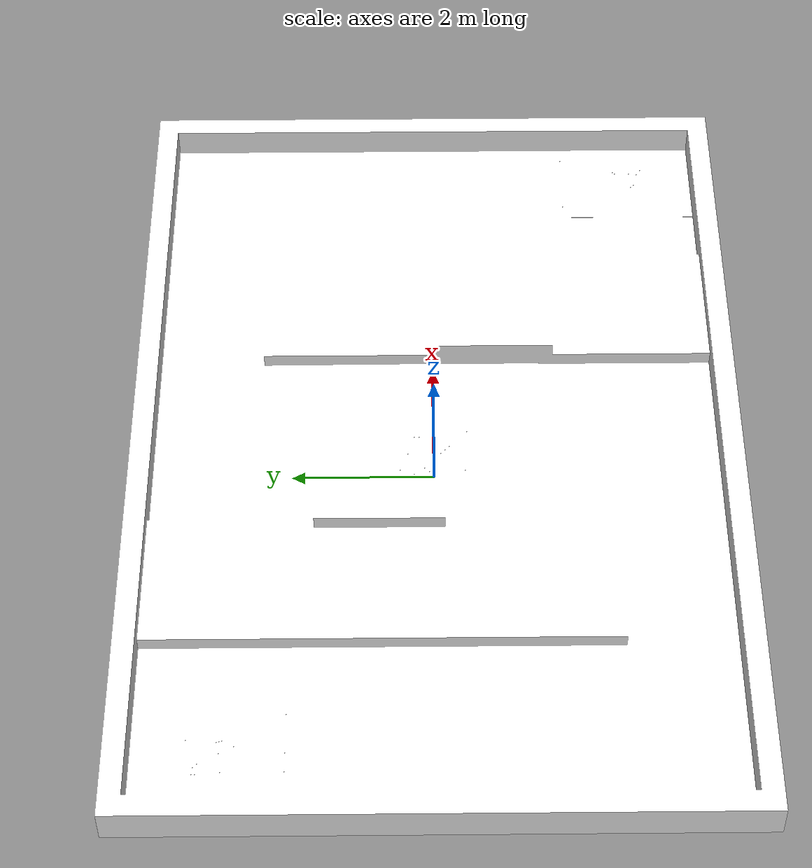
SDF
<?xml version='1.0' encoding='utf-8'?>
<sdf version='1.7'>
  <world name='default'>
    <!-- Physics -->
    <plugin filename="libignition-gazebo-physics-system.so" name="ignition::gazebo::systems::Physics">
    </plugin>

    <!-- Forwards simulation state to the GUI -->
    <plugin filename="libignition-gazebo-scene-broadcaster-system.so" name="ignition::gazebo::systems::SceneBroadcaster">
    </plugin>

    <!-- Processes user commands, like translate and create -->
    <plugin filename="libignition-gazebo-user-commands-system.so" name="ignition::gazebo::systems::UserCommands">
    </plugin>

    <!-- Generates rendering sensor data -->
    <plugin filename="libignition-gazebo-sensors-system.so" name="ignition::gazebo::systems::Sensors">
      <render_engine>ogre2</render_engine>
    </plugin>

    <plugin filename="libignition-gazebo-imu-system.so" name="ignition::gazebo::systems::Imu">
    </plugin>

    <light type='directional' name='direct_light'>
      <visualize>false</visualize>
      <cast_shadows>true</cast_shadows>
      <pose>7.4 3.6 10 0 0 0</pose>
      <diffuse>0.5 0.5 0.5 1</diffuse>
      <specular>0.5 0.5 0.5 1</specular>
      <attenuation>
        <range>1000</range>
        <constant>0.9</constant>
        <linear>0.01</linear>
        <quadratic>0.001</quadratic>
      </attenuation>
      <direction>0 0 -1</direction>
    </light>

    <model name='rmul_2026'>
      <include>
        <uri>model://rmul_2026</uri>
      </include>
      <pose>-5.7282 -4.5404 0.4844 -1.57 0 0</pose>
      <static>true</static>
    </model>
  </world>
</sdf>

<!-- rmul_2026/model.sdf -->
<sdf version='1.6'>
  <model name='rmul_2026'>
    <static>true</static>
    <link name='body'>
      <pose frame=''>0 0 0.2 0 0 0</pose>
      <self_collide>0</self_collide>
      <kinematic>0</kinematic>
      <gravity>1</gravity>
      <visual name='visual'>
        <geometry>
          <mesh>
            <uri>model://rmul_2026/meshes/rmul_2026.stl</uri>
            <scale>0.001 0.001 0.001</scale>
          </mesh>
        </geometry>
        <material>
          <ambient>0.3 0.3 0.3 1</ambient>
          <diffuse>1 1 1 1</diffuse>
          <specular>0.1 0.1 0.1 1</specular>
        </material>
      </visual>
      <collision name='collision'>
        <geometry>
          <mesh>
            <uri>model://rmul_2026/meshes/rmul_2026.stl</uri>
            <scale>0.001 0.001 0.001</scale>
          </mesh>
        </geometry>
      </collision>
    </link>
  </model>
</sdf>
